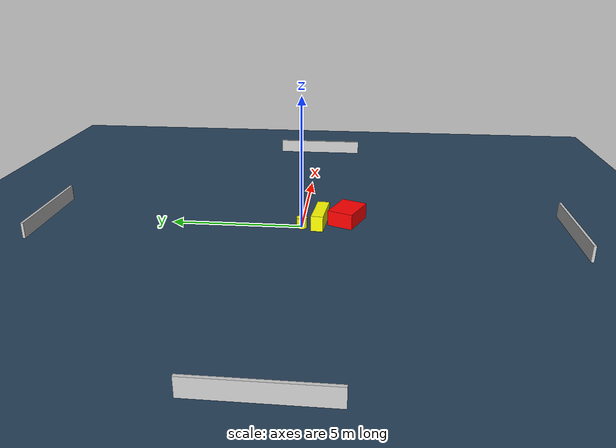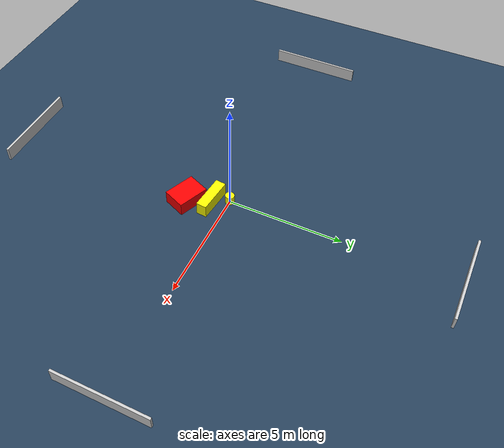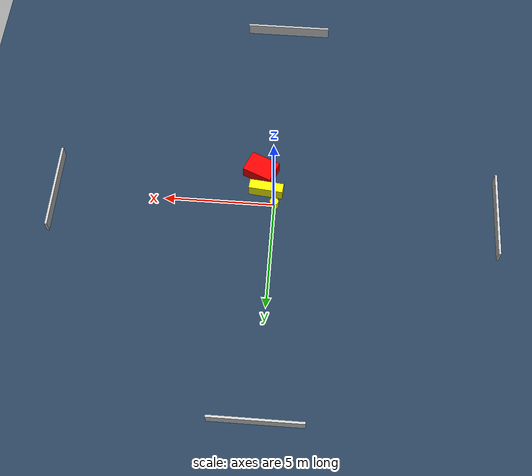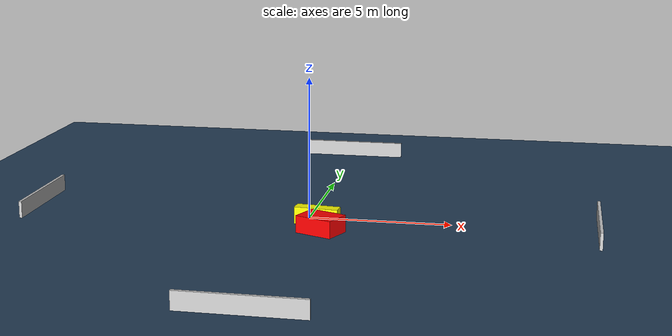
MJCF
<?xml version="1.0" ?>
<mujoco model="generated_environment">
  <option timestep="0.01" integrator="RK4" cone="elliptic"/>
  <default>
    <geom density="1"/>
  </default>
  <asset>
    <texture builtin="gradient" height="3072" name="skybox" rgb1="0.3 0.5 0.7" rgb2="0 0 0" type="skybox" width="512"/>
    <texture builtin="checker" height="300" name="groundplane" rgb1="0.2 0.3 0.4" rgb2="0.1 0.2 0.3" type="2d" width="300"/>
    <material name="groundplane" reflectance="0.2" texrepeat="5 5" texture="groundplane"/>
  </asset>
  <worldbody>
    <light dir="0 0 -1" directional="true" pos="0 0 1.5"/>
    <geom condim="3" friction="0.5 0.005 0.001" material="groundplane" name="floor" pos="0 0 0" size="0 0 0.05" type="plane"/>
    <body name="walls">
      <geom name="wall_1" condim="4" pos="-10.0 0.0 0.3" rgba="0.800000011920929 0.800000011920929 0.800000011920929 1.0" size="0.05 2.0 0.3" type="box"/>
      <geom name="wall_2" condim="4" pos="10.0 0.0 0.3" rgba="0.800000011920929 0.800000011920929 0.800000011920929 1.0" size="0.05 2.0 0.3" type="box"/>
      <geom name="wall_3" condim="4" pos="0.0 -10.0 0.3" rgba="0.800000011920929 0.800000011920929 0.800000011920929 1.0" size="2.0 0.05 0.3" type="box"/>
      <geom name="wall_4" condim="4" pos="0.0 10.0 0.3" rgba="0.800000011920929 0.800000011920929 0.800000011920929 1.0" size="2.0 0.05 0.3" type="box"/>
    </body>
    <body name="robot">
      <joint name="joint_x" type="slide" pos="0 0 0" axis="1 0 0"/>
      <joint name="joint_y" type="slide" pos="0 0 0" axis="0 1 0"/>
      <geom name="robot" type="cylinder" pos="0.0 0.0 0.2" size="0.2 0.2 0.0" mass="5.0" friction="1.0 0.005 0.0001" condim="4" rgba="1.0 1.0 0.0 1.0"/>
    </body>
    <body name="obstacle_1_movable">
      <geom name="obstacle_1_movable" condim="4" pos="0.40814948529863254 -0.6722154737481397 0.3" euler="0 0 354.15016610534775" friction="0.0 0.005 0.001" rgba="1.0 1.0 0.0 1.0" size="0.7756447823919022 0.22738555628510068 0.3" type="box" mass="0.1"/>
      <joint type="free"/>
    </body>
    <body name="obstacle_2_static">
      <geom name="obstacle_2_static" condim="4" pos="0.7151632549550173 -1.6927252240084265 0.3" euler="0 0 157.18855270116862" friction="0.0 0.005 0.001" rgba="1.0 0.0 0.0 1.0" size="0.6898933173419628 0.5001761437440579 0.3" type="box"/>
    </body>
  </worldbody>
  <actuator>
    <motor name="actuator_x" joint="joint_x" gear="1" ctrlrange="-1 1"/>
    <motor name="actuator_y" joint="joint_y" gear="1" ctrlrange="-1 1"/>
  </actuator>
</mujoco>
